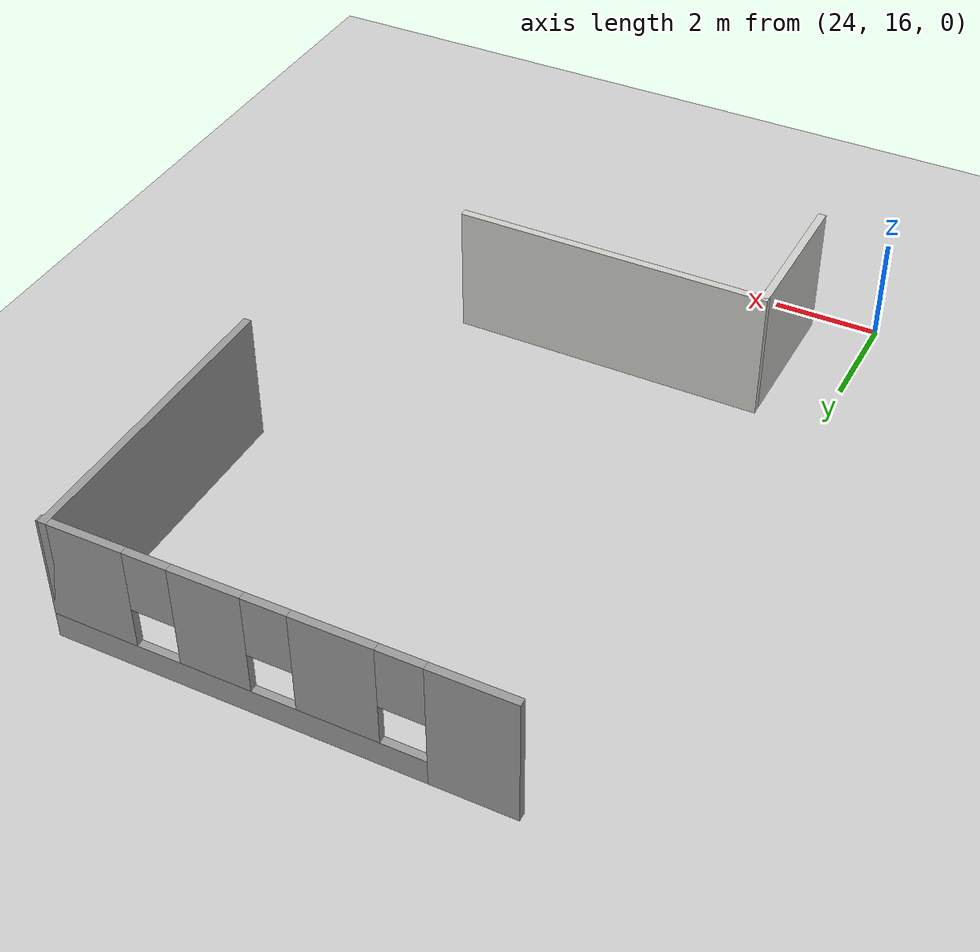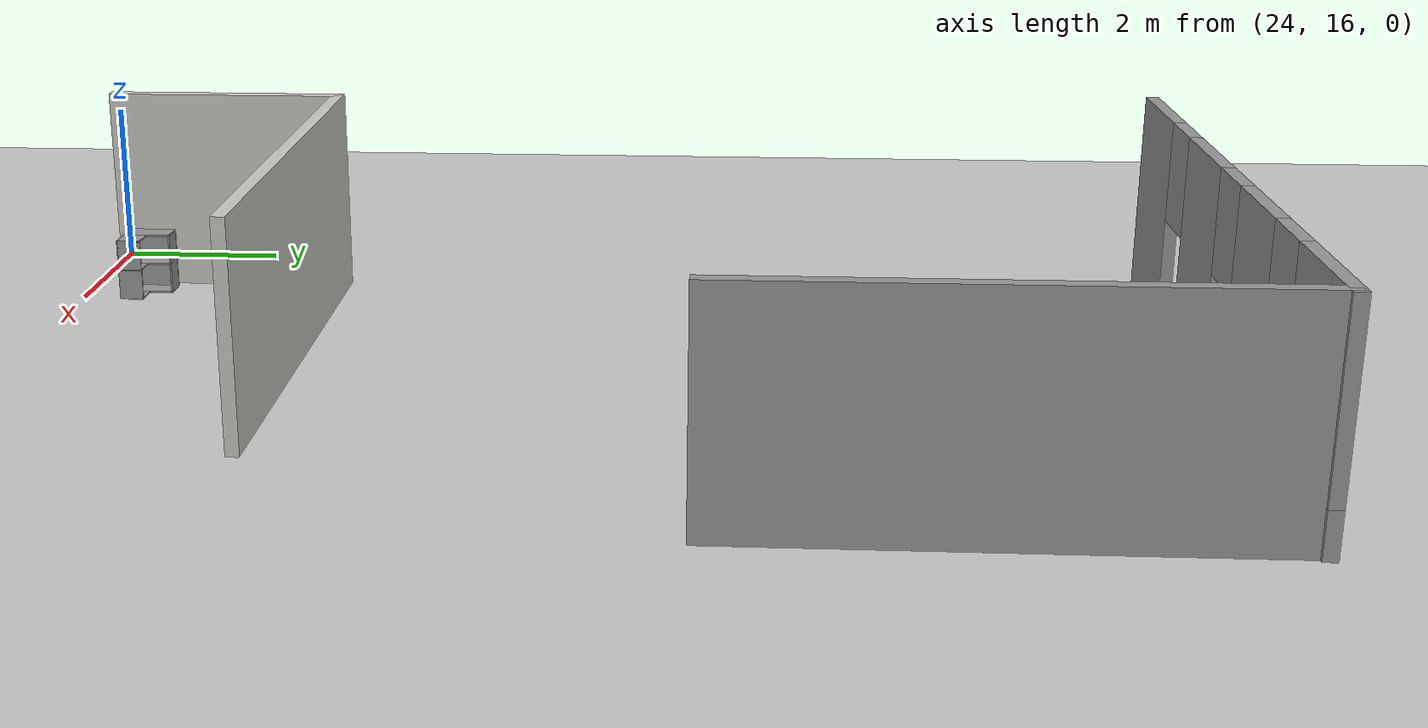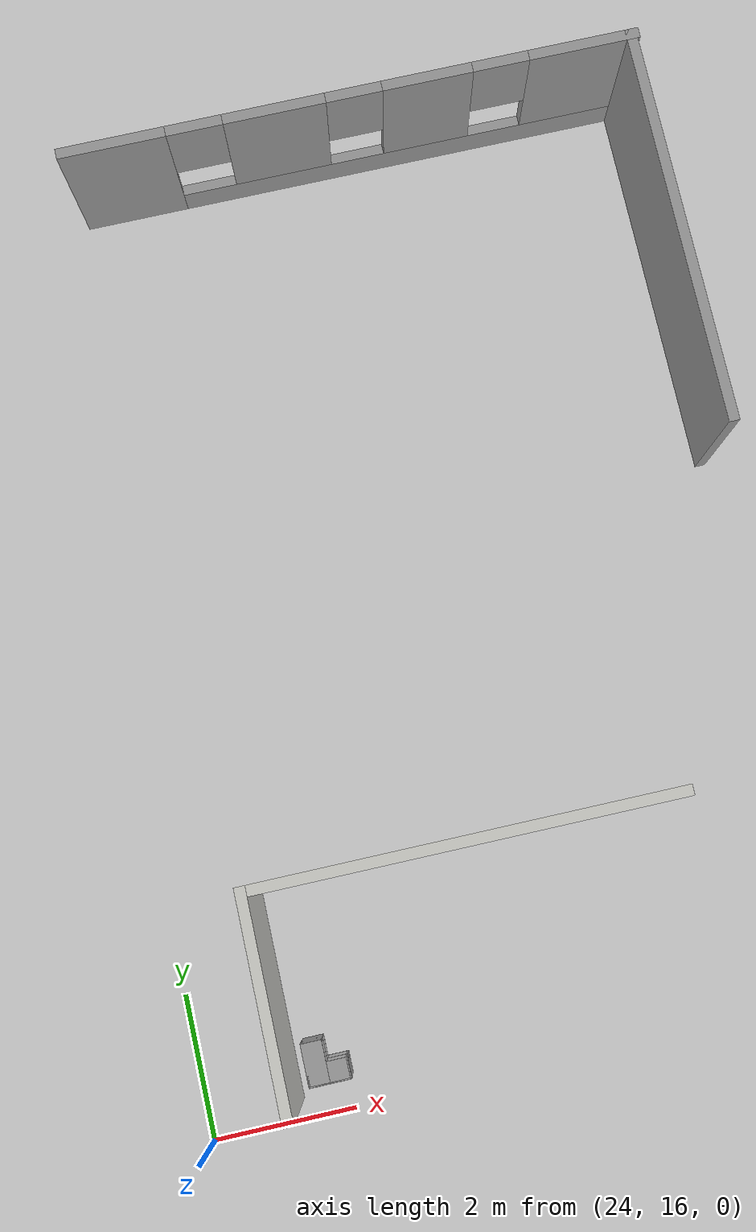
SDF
<sdf version="1.6">
 <world name="default">
  <model name="ground_plane">
   <static>1</static>
   <link name="link">
    <collision name="collision">
     <geometry><plane><normal>0 0 1</normal><size>100 100</size></plane></geometry>
     <surface>
      <contact><collide_bitmask>65535</collide_bitmask></contact>
      <friction><ode><mu>100</mu><mu2>50</mu2></ode></friction>
     </surface>
    </collision>
    <visual name="visual">
     <cast_shadows>0</cast_shadows>
     <geometry><plane><normal>0 0 1</normal><size>100 100</size></plane></geometry>
     <material>
      <script><uri>file://media/materials/scripts/gazebo.material</uri><name>Gazebo/Grey</name></script>
     </material>
    </visual>
   </link>
  </model>
  <model name="firstFloor">
   <pose>-0.116512 3.07366 0 0 -0 0</pose>
   <link name="Wall_20">
    <collision name="Wall_20_Collision">
     <geometry><box><size>6 0.15 2.5</size></box></geometry>
     <pose>0 0 1.25 0 -0 0</pose>
    </collision>
    <visual name="Wall_20_Visual">
     <pose>0 0 1.25 0 -0 0</pose>
     <geometry><box><size>6 0.15 2.5</size></box></geometry>
     <material>
      <script><uri>file://media/materials/scripts/gazebo.material</uri><name>Gazebo/CeilingTiled</name></script>
      <ambient>1 1 1 1</ambient>
     </material>
     <meta><layer>0</layer></meta>
    </visual>
    <pose>28.2901 16.1378 0 0 -0 3.14159</pose>
   </link>
   <link name="Wall_21">
    <collision name="Wall_21_Collision">
     <geometry><box><size>3 0.15 2.5</size></box></geometry>
     <pose>0 0 1.25 0 -0 0</pose>
    </collision>
    <visual name="Wall_21_Visual">
     <pose>0 0 1.25 0 -0 0</pose>
     <geometry><box><size>3 0.15 2.5</size></box></geometry>
     <material>
      <script><uri>file://media/materials/scripts/gazebo.material</uri><name>Gazebo/CeilingTiled</name></script>
      <ambient>1 1 1 1</ambient>
     </material>
     <meta><layer>0</layer></meta>
    </visual>
    <pose>25.3651 14.7128 0 0 0 -1.5708</pose>
   </link>
   <link name="Wall_53">
    <pose>29.0322 26.4098 0 0 -0 0</pose>
    <visual name="Wall_53_Visual_0">
     <pose>-3.35683 0 1.25 0 -0 0</pose>
     <geometry><box><size>1.52499 0.15 2.5</size></box></geometry>
     <material>
      <script><uri>file://media/materials/scripts/gazebo.material</uri><name>Gazebo/Grey</name></script>
      <ambient>1 1 1 1</ambient>
     </material>
     <meta><layer>0</layer></meta>
    </visual>
    <collision name="Wall_53_Collision_0">
     <geometry><box><size>1.52499 0.15 2.5</size></box></geometry>
     <pose>-3.35683 0 1.25 0 -0 0</pose>
    </collision>
    <visual name="Wall_53_Visual_1">
     <pose>0.762497 0 0.25 0 -0 0</pose>
     <geometry><box><size>6.71365 0.15 0.5</size></box></geometry>
     <material>
      <script><uri>file://media/materials/scripts/gazebo.material</uri><name>Gazebo/Grey</name></script>
      <ambient>1 1 1 1</ambient>
     </material>
     <meta><layer>0</layer></meta>
    </visual>
    <collision name="Wall_53_Collision_1">
     <geometry><box><size>6.71365 0.15 0.5</size></box></geometry>
     <pose>0.762497 0 0.25 0 -0 0</pose>
    </collision>
    <visual name="Wall_53_Visual_2">
     <pose>-1.06856 0 1.5 0 -0 0</pose>
     <geometry><box><size>1.45153 0.15 2</size></box></geometry>
     <material>
      <script><uri>file://media/materials/scripts/gazebo.material</uri><name>Gazebo/Grey</name></script>
      <ambient>1 1 1 1</ambient>
     </material>
     <meta><layer>0</layer></meta>
    </visual>
    <collision name="Wall_53_Collision_2">
     <geometry><box><size>1.45153 0.15 2</size></box></geometry>
     <pose>-1.06856 0 1.5 0 -0 0</pose>
    </collision>
    <visual name="Wall_53_Visual_3">
     <pose>1.10034 0 1.5 0 -0 0</pose>
     <geometry><box><size>1.28627 0.15 2</size></box></geometry>
     <material>
      <script><uri>file://media/materials/scripts/gazebo.material</uri><name>Gazebo/Grey</name></script>
      <ambient>1 1 1 1</ambient>
     </material>
     <meta><layer>0</layer></meta>
    </visual>
    <collision name="Wall_53_Collision_3">
     <geometry><box><size>1.28627 0.15 2</size></box></geometry>
     <pose>1.10034 0 1.5 0 -0 0</pose>
    </collision>
    <visual name="Wall_53_Visual_4">
     <pose>3.3314 0 1.5 0 -0 0</pose>
     <geometry><box><size>1.57585 0.15 2</size></box></geometry>
     <material>
      <script><uri>file://media/materials/scripts/gazebo.material</uri><name>Gazebo/Grey</name></script>
      <ambient>1 1 1 1</ambient>
     </material>
     <meta><layer>0</layer></meta>
    </visual>
    <collision name="Wall_53_Collision_4">
     <geometry><box><size>1.57585 0.15 2</size></box></geometry>
     <pose>3.3314 0 1.5 0 -0 0</pose>
    </collision>
    <visual name="Wall_53_Visual_5">
     <pose>-2.19433 0 1.9 0 -0 0</pose>
     <geometry><box><size>0.8 0.15 1.2</size></box></geometry>
     <material>
      <script><uri>file://media/materials/scripts/gazebo.material</uri><name>Gazebo/Grey</name></script>
      <ambient>1 1 1 1</ambient>
     </material>
     <meta><layer>0</layer></meta>
    </visual>
    <collision name="Wall_53_Collision_5">
     <geometry><box><size>0.8 0.15 1.2</size></box></geometry>
     <pose>-2.19433 0 1.9 0 -0 0</pose>
    </collision>
    <visual name="Wall_53_Visual_6">
     <pose>0.057199 0 1.9 0 -0 0</pose>
     <geometry><box><size>0.8 0.15 1.2</size></box></geometry>
     <material>
      <script><uri>file://media/materials/scripts/gazebo.material</uri><name>Gazebo/Grey</name></script>
      <ambient>1 1 1 1</ambient>
     </material>
     <meta><layer>0</layer></meta>
    </visual>
    <collision name="Wall_53_Collision_6">
     <geometry><box><size>0.8 0.15 1.2</size></box></geometry>
     <pose>0.057199 0 1.9 0 -0 0</pose>
    </collision>
    <visual name="Wall_53_Visual_7">
     <pose>2.14347 0 1.9 0 -0 0</pose>
     <geometry><box><size>0.8 0.15 1.2</size></box></geometry>
     <material>
      <script><uri>file://media/materials/scripts/gazebo.material</uri><name>Gazebo/Grey</name></script>
      <ambient>1 1 1 1</ambient>
     </material>
     <meta><layer>0</layer></meta>
    </visual>
    <collision name="Wall_53_Collision_7">
     <geometry><box><size>0.8 0.15 1.2</size></box></geometry>
     <pose>2.14347 0 1.9 0 -0 0</pose>
    </collision>
   </link>
   <link name="Wall_54">
    <collision name="Wall_54_Collision">
     <geometry><box><size>5.75 0.15 2.5</size></box></geometry>
     <pose>0 0 1.25 0 -0 0</pose>
    </collision>
    <visual name="Wall_54_Visual">
     <pose>0 0 1.25 0 -0 0</pose>
     <geometry><box><size>5.75 0.15 2.5</size></box></geometry>
     <material>
      <script><uri>file://media/materials/scripts/gazebo.material</uri><name>Gazebo/Grey</name></script>
      <ambient>1 1 1 1</ambient>
     </material>
     <meta><layer>0</layer></meta>
    </visual>
    <pose>33.0368 23.6098 0 0 0 -1.5708</pose>
   </link>
   <static>1</static>
  </model>
  <model name="Wall_Cabinet_Coin_24x30W_0">
   <link name="Wall_10">
    <pose>0.286 -0.148 0.384 0 -0 0</pose>
    <inertial>
     <mass>2.1259</mass>
     <inertia><ixx>0.0158</ixx><iyy>0.1202</iyy><izz>0.1046</izz><ixy>0</ixy><ixz>0</ixz><iyz>0</iyz></inertia>
    </inertial>
    <collision name="Wall_10_Collision"><geometry><box><size>0.02 0.296 0.768</size></box></geometry></collision>
    <visual name="Wall_10_Visual">
     <geometry><box><size>0.02 0.296 0.768</size></box></geometry>
     <material>
      <script><uri>file://media/materials/scripts/gazebo.material</uri><name>Gazebo/Grey</name></script>
      <ambient>1 1 1 1</ambient>
     </material>
    </visual>
   </link>
   <joint name="10_16" type="fixed">
    <pose>0 0 -0.374 0 -0 0</pose>
    <parent>Wall_16</parent>
    <child>Wall_10</child>
    <axis>
     <xyz>1 0 0</xyz>
     <use_parent_model_frame>0</use_parent_model_frame>
     <limit><lower>-1e+16</lower><upper>1e+16</upper></limit>
    </axis>
   </joint>
   <joint name="10_14" type="fixed">
    <parent>Wall_14</parent>
    <child>Wall_10</child>
    <axis>
     <xyz>1 0 0</xyz>
     <use_parent_model_frame>0</use_parent_model_frame>
     <limit><lower>-1e+16</lower><upper>1e+16</upper></limit>
    </axis>
   </joint>
   <joint name="10_12" type="fixed">
    <pose>0 0 0.374 0 -0 0</pose>
    <parent>Wall_12</parent>
    <child>Wall_10</child>
    <axis>
     <xyz>1 0 0</xyz>
     <use_parent_model_frame>0</use_parent_model_frame>
     <limit><lower>-1e+16</lower><upper>1e+16</upper></limit>
    </axis>
   </joint>
   <joint name="10_29" type="fixed">
    <pose>0 -0.148 0 0 -0 0</pose>
    <parent>Wall_29</parent>
    <child>Wall_10</child>
    <axis>
     <xyz>1 0 0</xyz>
     <use_parent_model_frame>0</use_parent_model_frame>
     <limit><lower>-1e+16</lower><upper>1e+16</upper></limit>
    </axis>
   </joint>
   <link name="Wall_12">
    <pose>0.148 -0.148 0.758 0 -0 0</pose>
    <inertial>
     <mass>0.8802</mass>
     <inertia><ixx>0.0065</ixx><iyy>0.0139</iyy><izz>0.0074</izz><ixy>0</ixy><ixz>0</ixz><iyz>0</iyz></inertia>
    </inertial>
    <collision name="Wall_12_Collision"><geometry><box><size>0.296 0.296 0.02</size></box></geometry></collision>
    <visual name="Wall_12_Visual">
     <geometry><box><size>0.296 0.296 0.02</size></box></geometry>
     <material>
      <script><uri>file://media/materials/scripts/gazebo.material</uri><name>Gazebo/Grey</name></script>
      <ambient>1 1 1 1</ambient>
     </material>
    </visual>
   </link>
   <joint name="12_29" type="fixed">
    <pose>0 -0.148 0 0 -0 0</pose>
    <parent>Wall_29</parent>
    <child>Wall_12</child>
    <axis>
     <xyz>0 0 1</xyz>
     <use_parent_model_frame>0</use_parent_model_frame>
     <limit><lower>-1e+16</lower><upper>1e+16</upper></limit>
    </axis>
   </joint>
   <link name="Wall_14">
    <pose>0.148 -0.148 0.384 0 -0 0</pose>
    <inertial>
     <mass>0.8802</mass>
     <inertia><ixx>0.0065</ixx><iyy>0.0139</iyy><izz>0.0074</izz><ixy>0</ixy><ixz>0</ixz><iyz>0</iyz></inertia>
    </inertial>
    <collision name="Wall_14_Collision"><geometry><box><size>0.296 0.296 0.02</size></box></geometry></collision>
    <visual name="Wall_14_Visual">
     <geometry><box><size>0.296 0.296 0.02</size></box></geometry>
     <material>
      <script><uri>file://media/materials/scripts/gazebo.material</uri><name>Gazebo/Grey</name></script>
      <ambient>1 1 1 1</ambient>
     </material>
    </visual>
   </link>
   <joint name="14_29" type="fixed">
    <pose>0 -0.148 0 0 -0 0</pose>
    <parent>Wall_29</parent>
    <child>Wall_14</child>
    <axis>
     <xyz>0 1 0</xyz>
     <use_parent_model_frame>0</use_parent_model_frame>
     <limit><lower>-1e+16</lower><upper>1e+16</upper></limit>
    </axis>
   </joint>
   <link name="Wall_16">
    <pose>0.148 -0.148 0.01 0 -0 0</pose>
    <inertial>
     <mass>0.8802</mass>
     <inertia><ixx>0.0065</ixx><iyy>0.0139</iyy><izz>0.0074</izz><ixy>0</ixy><ixz>0</ixz><iyz>0</iyz></inertia>
    </inertial>
    <collision name="Wall_16_Collision"><geometry><box><size>0.296 0.296 0.02</size></box></geometry></collision>
    <visual name="Wall_16_Visual">
     <geometry><box><size>0.296 0.296 0.02</size></box></geometry>
     <material>
      <script><uri>file://media/materials/scripts/gazebo.material</uri><name>Gazebo/Grey</name></script>
      <ambient>1 1 1 1</ambient>
     </material>
    </visual>
   </link>
   <joint name="16_29" type="fixed">
    <pose>0 -0.148 0 0 -0 0</pose>
    <parent>Wall_29</parent>
    <child>Wall_16</child>
    <axis>
     <xyz>0 1 0</xyz>
     <use_parent_model_frame>0</use_parent_model_frame>
     <limit><lower>-1e+16</lower><upper>1e+16</upper></limit>
    </axis>
   </joint>
   <link name="Wall_18">
    <pose>-0.148 0 0.01 0 -0 0</pose>
    <inertial>
     <mass>1.6525</mass>
     <inertia><ixx>0.0491</ixx><iyy>0.0613</iyy><izz>0.0123</izz><ixy>0</ixy><ixz>0</ixz><iyz>0</iyz></inertia>
    </inertial>
    <collision name="Wall_18_Collision"><geometry><box><size>0.296 0.592 0.02</size></box></geometry></collision>
    <visual name="Wall_18_Visual">
     <geometry><box><size>0.296 0.592 0.02</size></box></geometry>
     <material>
      <script><uri>file://media/materials/scripts/gazebo.material</uri><name>Gazebo/Grey</name></script>
      <ambient>1 1 1 1</ambient>
     </material>
    </visual>
   </link>
   <joint name="18_16" type="fixed">
    <pose>0.148 -0.148 0 0 -0 0</pose>
    <parent>Wall_16</parent>
    <child>Wall_18</child>
    <axis>
     <xyz>1 0 0</xyz>
     <use_parent_model_frame>0</use_parent_model_frame>
     <limit><lower>-1e+16</lower><upper>1e+16</upper></limit>
    </axis>
   </joint>
   <joint name="18_29" type="fixed">
    <pose>0 -0.296 0 0 -0 0</pose>
    <parent>Wall_29</parent>
    <child>Wall_18</child>
    <axis>
     <xyz>0 1 0</xyz>
     <use_parent_model_frame>0</use_parent_model_frame>
     <limit><lower>-1e+16</lower><upper>1e+16</upper></limit>
    </axis>
   </joint>
   <joint name="18_27" type="fixed">
    <pose>-0.148 0 0 0 -0 0</pose>
    <parent>Wall_27</parent>
    <child>Wall_18</child>
    <axis>
     <xyz>1 0 0</xyz>
     <use_parent_model_frame>0</use_parent_model_frame>
     <limit><lower>-1e+16</lower><upper>1e+16</upper></limit>
    </axis>
   </joint>
   <joint name="18_30" type="fixed">
    <pose>0 0.296 0 0 -0 0</pose>
    <parent>Wall_30</parent>
    <child>Wall_18</child>
    <axis>
     <xyz>0 1 0</xyz>
     <use_parent_model_frame>0</use_parent_model_frame>
     <limit><lower>-1e+16</lower><upper>1e+16</upper></limit>
    </axis>
   </joint>
   <link name="Wall_20">
    <pose>-0.148 0 0.384 0 -0 0</pose>
    <inertial>
     <mass>1.6525</mass>
     <inertia><ixx>0.0491</ixx><iyy>0.0613</iyy><izz>0.0123</izz><ixy>0</ixy><ixz>0</ixz><iyz>0</iyz></inertia>
    </inertial>
    <collision name="Wall_20_Collision"><geometry><box><size>0.296 0.592 0.02</size></box></geometry></collision>
    <visual name="Wall_20_Visual">
     <geometry><box><size>0.296 0.592 0.02</size></box></geometry>
     <material>
      <script><uri>file://media/materials/scripts/gazebo.material</uri><name>Gazebo/Grey</name></script>
      <ambient>1 1 1 1</ambient>
     </material>
    </visual>
   </link>
   <joint name="20_14" type="fixed">
    <pose>0.148 -0.148 0 0 -0 0</pose>
    <parent>Wall_14</parent>
    <child>Wall_20</child>
    <axis>
     <xyz>1 0 0</xyz>
     <use_parent_model_frame>0</use_parent_model_frame>
     <limit><lower>-1e+16</lower><upper>1e+16</upper></limit>
    </axis>
   </joint>
   <joint name="20_29" type="fixed">
    <pose>0 -0.296 0 0 -0 0</pose>
    <parent>Wall_29</parent>
    <child>Wall_20</child>
    <axis>
     <xyz>0 1 0</xyz>
     <use_parent_model_frame>0</use_parent_model_frame>
     <limit><lower>-1e+16</lower><upper>1e+16</upper></limit>
    </axis>
   </joint>
   <joint name="20_27" type="fixed">
    <pose>-0.148 0 0 0 -0 0</pose>
    <parent>Wall_27</parent>
    <child>Wall_20</child>
    <axis>
     <xyz>1 0 0</xyz>
     <use_parent_model_frame>0</use_parent_model_frame>
     <limit><lower>-1e+16</lower><upper>1e+16</upper></limit>
    </axis>
   </joint>
   <joint name="20_30" type="fixed">
    <pose>0 0.296 0 0 -0 0</pose>
    <parent>Wall_30</parent>
    <child>Wall_20</child>
    <axis>
     <xyz>0 1 0</xyz>
     <use_parent_model_frame>0</use_parent_model_frame>
     <limit><lower>-1e+16</lower><upper>1e+16</upper></limit>
    </axis>
   </joint>
   <link name="Wall_22">
    <pose>-0.148 0 0.758 0 -0 0</pose>
    <inertial>
     <mass>1.6525</mass>
     <inertia><ixx>0.0491</ixx><iyy>0.0613</iyy><izz>0.0123</izz><ixy>0</ixy><ixz>0</ixz><iyz>0</iyz></inertia>
    </inertial>
    <collision name="Wall_22_Collision"><geometry><box><size>0.296 0.592 0.02</size></box></geometry></collision>
    <visual name="Wall_22_Visual">
     <geometry><box><size>0.296 0.592 0.02</size></box></geometry>
     <material>
      <script><uri>file://media/materials/scripts/gazebo.material</uri><name>Gazebo/Grey</name></script>
      <ambient>1 1 1 1</ambient>
     </material>
    </visual>
   </link>
   <joint name="22_12" type="fixed">
    <pose>0.148 -0.148 0 0 -0 0</pose>
    <parent>Wall_12</parent>
    <child>Wall_22</child>
    <axis>
     <xyz>1 0 0</xyz>
     <use_parent_model_frame>0</use_parent_model_frame>
     <limit><lower>-1e+16</lower><upper>1e+16</upper></limit>
    </axis>
   </joint>
   <joint name="22_29" type="fixed">
    <pose>0 -0.296 0 0 -0 0</pose>
    <parent>Wall_29</parent>
    <child>Wall_22</child>
    <axis>
     <xyz>0 1 0</xyz>
     <use_parent_model_frame>0</use_parent_model_frame>
     <limit><lower>-1e+16</lower><upper>1e+16</upper></limit>
    </axis>
   </joint>
   <joint name="22_27" type="fixed">
    <pose>-0.148 0 0 0 -0 0</pose>
    <parent>Wall_27</parent>
    <child>Wall_22</child>
    <axis>
     <xyz>1 0 0</xyz>
     <use_parent_model_frame>0</use_parent_model_frame>
     <limit><lower>-1e+16</lower><upper>1e+16</upper></limit>
    </axis>
   </joint>
   <joint name="22_30" type="fixed">
    <pose>0 0.296 0 0 -0 0</pose>
    <parent>Wall_30</parent>
    <child>Wall_22</child>
    <axis>
     <xyz>0 1 0</xyz>
     <use_parent_model_frame>0</use_parent_model_frame>
     <limit><lower>-1e+16</lower><upper>1e+16</upper></limit>
    </axis>
   </joint>
   <link name="Wall_27">
    <pose>-0.286 0 0.384 0 -0 0</pose>
    <inertial>
     <mass>4.2589</mass>
     <inertia><ixx>0.1266</ixx><iyy>0.3358</iyy><izz>0.2095</izz><ixy>0</ixy><ixz>0</ixz><iyz>0</iyz></inertia>
    </inertial>
    <collision name="Wall_27_Collision"><geometry><box><size>0.02 0.592 0.768</size></box></geometry></collision>
    <visual name="Wall_27_Visual">
     <geometry><box><size>0.02 0.592 0.768</size></box></geometry>
     <material>
      <script><uri>file://media/materials/scripts/gazebo.material</uri><name>Gazebo/Grey</name></script>
      <ambient>1 1 1 1</ambient>
     </material>
    </visual>
   </link>
   <joint name="27_30" type="fixed">
    <pose>0 0.296 0 0 -0 0</pose>
    <parent>Wall_30</parent>
    <child>Wall_27</child>
    <axis>
     <xyz>0 1 0</xyz>
     <use_parent_model_frame>0</use_parent_model_frame>
     <limit><lower>-1e+16</lower><upper>1e+16</upper></limit>
    </axis>
   </joint>
   <link name="Wall_29">
    <pose>0 -0.286 0.384 0 -0 0</pose>
    <inertial>
     <mass>4.3176</mass>
     <inertia><ixx>0.134</ixx><iyy>0.2091</iyy><izz>0.3428</izz><ixy>0</ixy><ixz>0</ixz><iyz>0</iyz></inertia>
    </inertial>
    <collision name="Wall_29_Collision"><geometry><box><size>0.592 0.02 0.768</size></box></geometry></collision>
    <visual name="Wall_29_Visual">
     <geometry><box><size>0.592 0.02 0.768</size></box></geometry>
     <material>
      <script><uri>file://media/materials/scripts/gazebo.material</uri><name>Gazebo/Grey</name></script>
      <ambient>1 1 1 1</ambient>
     </material>
    </visual>
   </link>
   <link name="Wall_30">
    <pose>-0.148 0.286 0.384 0 -0 0</pose>
    <inertial>
     <mass>2.1093</mass>
     <inertia><ixx>0.1021</ixx><iyy>0.0157</iyy><izz>0.1177</izz><ixy>0</ixy><ixz>0</ixz><iyz>0</iyz></inertia>
    </inertial>
    <collision name="Wall_30_Collision"><geometry><box><size>0.296 0.02 0.768</size></box></geometry></collision>
    <visual name="Wall_30_Visual">
     <geometry><box><size>0.296 0.02 0.768</size></box></geometry>
     <material>
      <script><uri>file://media/materials/scripts/gazebo.material</uri><name>Gazebo/Grey</name></script>
      <ambient>1 1 1 1</ambient>
     </material>
    </visual>
   </link>
   <static>1</static>
   <pose>25.7602 16.7724 0 0 -0 0</pose>
  </model>
 </world>
</sdf>
